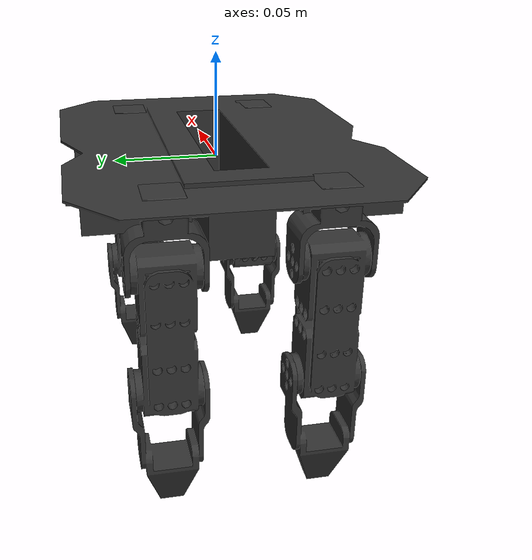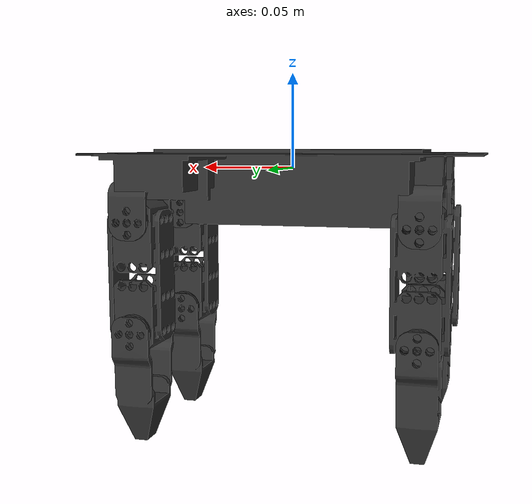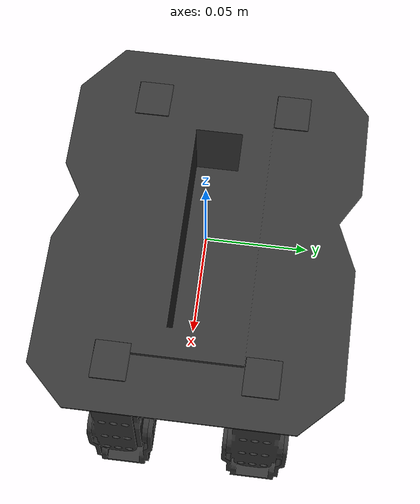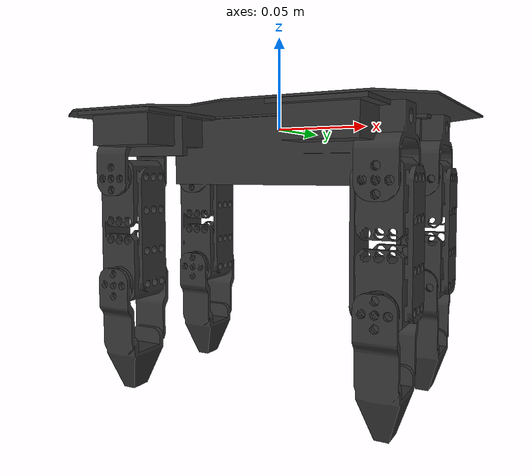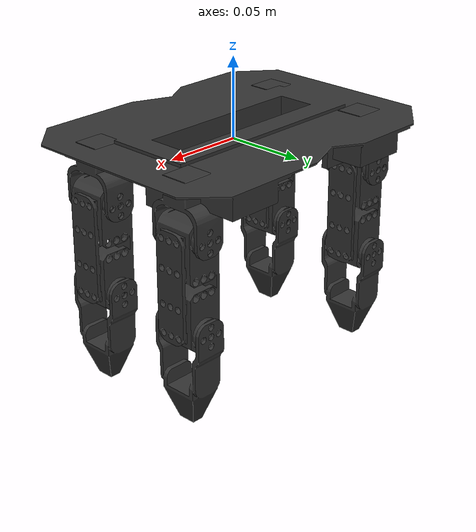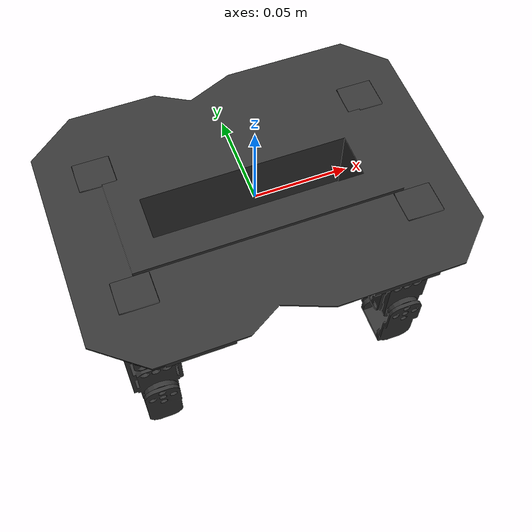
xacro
<?xml version='1.0'?>
  <robot xmlns:xacro="http://www.ros.org/wiki/xacro" name="ker">

    <xacro:property name="pi" value="3.14159265359" />

    <xacro:property name="bodywidth" value=".12000000" />
    <xacro:property name="bodylen" value=".200000000" />
    <xacro:property name="bodyheight" value=".0310000000" />
    <xacro:property name="bodymass" value="0.3045248" />

    <xacro:property name="motorwidth" value=".0344" />
    <xacro:property name="motorlen" value=".022" />
    <xacro:property name="motorheight" value=".0472" />

    <xacro:property name="bigmotorwidth" value=".025" />
    <xacro:property name="bigmotorlen" value=".051" />
    <xacro:property name="bigmotorheight" value=".053" />

    <xacro:property name="humeruswidth" value=" 0.025" />
    <xacro:property name="humeruslen" value="0.022" />
    <xacro:property name="humerusheight" value=" 0.076" />
    <xacro:property name="humerusmass" value="0.03619760" />

    <xacro:property name="femurwidth" value=" 0.025" />
    <xacro:property name="femurlen" value="0.022" />
    <xacro:property name="femurheight" value="0.076" />
    <xacro:property name="femurmass" value="0.03619760" />

    <xacro:property name="radiuswidth" value="0.025" />
    <xacro:property name="radiuslen" value="0.022" />
    <xacro:property name="radiusheight" value="0.06856" />
    <xacro:property name="radiusmass" value="0.00992447" />

    <xacro:property name="tibulawidth" value="0.025" />
    <xacro:property name="tibulalen" value="0.022" />
    <xacro:property name="tibulaheight" value="0.06856" />
    <xacro:property name="tibulamass" value="0.00992447" />

    <xacro:property name="bodytoaxislen" value="0.073" />
    <xacro:property name="bodytoaxiswidth" value="0.036" />

  <xacro:property name="jointdamping" value="1.2"/>
  <xacro:property name="jointeffort" value="1e20"/>
  <xacro:property name="jointvelocity" value="1e6"/>

    <!--TRANSMISSION-->
    <xacro:macro name="ker_transmission" params="joint_name">
      <transmission name="${joint_name}_transmission">
        <type>transmission_interface/SimpleTransmission</type>
          <joint name="${joint_name}">
            <hardwareInterface>VelocityJointInterface</hardwareInterface>
          </joint>
          <actuator name="${joint_name}_motor">
            <mechanicalReduction>1</mechanicalReduction>
          </actuator>
      </transmission>
	</xacro:macro>

    <!--BODY INERTIAL PARAMETERS-->
    <xacro:macro name="body_inertial">
        <inertial>
                <origin rpy="0 0 0" xyz="0 0 0"/>
                <mass value="${bodymass}" />
                <inertia ixx="${bodymass*(bodywidth*bodywidth + bodyheight*bodyheight)/12}" ixy="0" ixz="0"
                     iyy="${bodymass*(bodylen*bodylen + bodyheight*bodyheight)/12}" iyz="0"
                     izz="${bodymass*(bodylen*bodylen + bodywidth*bodywidth)/12}" />
        </inertial>
    </xacro:macro>

    <!--SHOULDER INERTIAL PARAMETERS-->
    <xacro:macro name="shoulder_inertial">
        <inertial>
                <origin rpy="0 0 0" xyz="0 0 ${-bigmotorwidth/2}"/>
                <mass value="0.0082825" />
                <inertia ixx="${1000*0.00000000163}" ixy="0.0" ixz="0.0"
                     iyy="${1000*0.00000000114}" iyz="0.0"
                     izz="${1000*0.00000000103}" />
        </inertial>
    </xacro:macro>

    <!--CORONA INERTIAL PARAMETERS-->
    <xacro:macro name="corona_inertial">
        <inertial>
                <origin rpy="0 0 0" xyz="0 0 0"/>
                <mass value="${2*0.0167}" />
                <inertia ixx="${2*0.0167*0.08333333*bigmotorwidth^2 + 2*0.0167*0.08333333*bigmotorheight^2}" ixy="0.0" ixz="0.0"
                     iyy="${2*0.0167*0.08333333*bigmotorlen^2 + 2*0.0167*0.08333333*bigmotorheight^2}" iyz="0.0"
                     izz="${2*0.0167*0.08333333*bigmotorlen^2 + 2*0.0167*0.08333333*bigmotorwidth^2}" />
        </inertial>
    </xacro:macro>

    <!--HUMERUS AND FEMUR INERTIAL PARAMETERS-->
    <xacro:macro name="humerus_femur_inertial" params="mass">
        <inertial>
                <origin rpy="0 0 0" xyz="0 0 ${-humerusheight/2 + 0.01}"/>
                <mass value="${humerusmass}" />
                <inertia ixx="${humerusmass*(humeruswidth*humeruswidth + humerusheight*humerusheight)/12}" ixy="0" ixz="0"
                     iyy="${humerusmass*(humeruslen*humeruslen + humerusheight*humerusheight)/12}" iyz="0"
                     izz="${humerusmass*(humeruslen*humeruslen + humeruswidth*humeruswidth)/12}" />
        </inertial>
    </xacro:macro>

    <!--RADIUS AND TIBULA INERTIAL PARAMETERS-->
    <xacro:macro name="radius_tibula_inertial" params="mass">
        <inertial>
                <origin rpy="0 0 0" xyz="0 0 ${-radiusheight/2 +0.01}"/>
                <mass value="${radiusmass}" />
                <inertia ixx="${radiusmass*(radiuswidth*radiuswidth + radiusheight*radiusheight)/12}" ixy="0" ixz="0"
                     iyy="${radiusmass*(radiuslen*radiuslen + radiusheight*radiusheight)/12}" iyz="0"
                     izz="${radiusmass*(radiuswidth*radiuswidth + radiuslen*radiuslen)/12}" />
        </inertial>
    </xacro:macro>

    <!--JOINT OPTION PRESETS-->
    <xacro:macro name="fixed" params="name pname origin">
        <joint name="${name}_joint" type="fixed">
            <parent link="${pname}"/>
            <child link="${name}"/>
            <origin xyz="${origin}" rpy="0 0 0"/>
        </joint>
    </xacro:macro>

    <xacro:macro name="revolute" params="name pname origin rot axis">
        <joint name="${name}_joint" type="revolute">
            <parent link="${pname}"/>
            <child link="${name}"/>
            <origin xyz="${origin}" rpy="${rot}"/>
            <axis xyz="${axis}"/>
            <dynamics damping="0.002" friction="0.01"/>
            <limit effort="0.4" velocity="10" lower="-3.14" upper="3.14"/>
        </joint>
    </xacro:macro>

    <!--SHOULDER-->
    <xacro:macro name="shoulder" params="name *type">
    <link name="${name}">
        <xacro:shoulder_inertial/>
        <visual>
            <geometry>
              <!--box size="${motorlen} ${motorwidth} ${motorheight}"/-->
              <mesh filename="package://ker_description/meshes/roll.STL" scale="1 1 1"/>
            </geometry>
            <origin xyz="0 0 ${-bigmotorwidth/2}" rpy="0 0 0"/>
            <material name="grey">
                <color rgba=".2 .2 .2 1"/>
            </material>
        </visual>
        <collision>
            <geometry>
              <box size="${motorlen} ${motorwidth} ${motorheight}"/>
              <!--mesh filename="package://ker_description/meshes/roll.STL" scale="1 1 1"/-->
            </geometry>
            <origin xyz="0 0 ${-bigmotorwidth/2}" rpy="0 0 0"/>
        </collision>
    </link>
    <xacro:insert_block name="type" />
    </xacro:macro>

    <!--HUMERUS-->
    <xacro:macro name="humerus" params="name *type">
    <link name="${name}">
        <xacro:humerus_femur_inertial mass="1"/>
        <collision>
          <origin xyz="0 0 ${-humerusheight/2 + 0.01}" rpy="0 0 0"/>
          <geometry>
            <box size="${humeruslen} ${humeruswidth} ${humerusheight}"/>
            <!--mesh filename="package://ker_description/meshes/humerus.stl" scale="1 1 1"/-->
          </geometry>
        </collision>
        <visual>
          <origin xyz="0 0 ${-humerusheight/2 + 0.01}" rpy="0 0 0"/>
          <geometry>
            <!--box size = "${humeruslen} ${humeruswidth} ${humerusheight}"/-->
            <mesh filename="package://ker_description/meshes/humerus.stl" scale="1 1 1"/>
          </geometry>
          <material name="grey">
              <color rgba=".2 .2 .2 1"/>
          </material>
        </visual>
    </link>
    <xacro:insert_block name="type" />
    <xacro:ker_transmission joint_name="${name}_joint" />
    </xacro:macro>

    <!--FEMUR-->
    <xacro:macro name="femur" params="name *type">
    <link name="${name}">
        <xacro:humerus_femur_inertial mass="1"/>
        <collision>
          <origin xyz="0 0 ${-femurheight/2 + 0.01}" rpy="0 0 0"/>
          <geometry>
            <box size="${femurlen} ${femurwidth} ${femurheight}"/>
            <!--mesh filename="package://ker_description/meshes/humerus.stl" scale="1 1 1"/-->
          </geometry>
        </collision>
        <visual>
          <origin xyz="0 0 ${-femurheight/2 + 0.01}" rpy="0 0 0"/>
          <geometry>
            <mesh filename="package://ker_description/meshes/humerus.stl" scale="1 1 1"/>
            <!--box size = "${femurlen} ${femurwidth} ${femurheight}"/-->
          </geometry>
          <material name="grey">
              <color rgba=".2 .2 .2 1"/>
          </material>
       </visual>
    </link>
    <xacro:insert_block name="type" />
    <xacro:ker_transmission joint_name="${name}_joint" />
    </xacro:macro>

    <!--RADIUS-->
    <xacro:macro name="radius" params="name *type">
    <link name="${name}">
        <xacro:radius_tibula_inertial mass="1"/>
        <collision>
          <origin xyz="0 0 ${-radiusheight/2 + 0.008}" rpy="0 0 0"/>
          <geometry>
            <box size = "${radiuslen} ${radiuswidth} ${radiusheight-0.025}"/>
            <!--sphere radius="0.01"/-->
          </geometry>
        </collision>
        <collision>
          <origin xyz="0 0 ${-radiusheight/2 - 0.013}" rpy="0 0 0"/>
          <geometry>
            <sphere radius="0.015"/>
          </geometry>
        </collision>
        <visual>
          <origin xyz="0 0 ${-radiusheight/2+0.018}" rpy="0 0 0"/>
          <geometry>
            <mesh filename="package://ker_description/meshes/radius_3_dec.STL" scale="1 1 1"/>
          </geometry>
          <material name="grey">
              <color rgba=".2 .2 .2 1"/>
          </material>
        </visual>
    </link>
    <gazebo reference="${name}">
        <kp>1000000.0</kp>
        <kd>10.0</kd>
        <mu1>1</mu1>
        <mu2>0.5</mu2>
        <fdir1>1 1 0</fdir1>
        <maxVel>1.2</maxVel>
        <minDepth>0.00</minDepth>
    </gazebo>
    <xacro:insert_block name="type" />
    <xacro:ker_transmission joint_name="${name}_joint" />
    </xacro:macro>

    <!--TIBULA-->
    <xacro:macro name="tibula" params="name *type">
    <link name="${name}">
        <xacro:radius_tibula_inertial mass="1"/>
        <collision>
          <origin xyz="0 0 ${-tibulaheight/2 + 0.008}" rpy="0 0 0"/>
          <geometry>
            <box size="${tibulalen} ${tibulawidth} ${tibulaheight-0.025}"/>
          </geometry>
        </collision>
        <collision>
          <origin xyz="0 0 ${-radiusheight/2 - 0.013}" rpy="0 0 0"/>
          <geometry>
            <sphere radius="0.015"/>
          </geometry>
        </collision>
        <visual>
          <origin xyz="0 0 ${-tibulaheight/2 + 0.018}" rpy="0 0 0"/>
          <geometry>
            <!--box size = "${tibulalen} ${tibulawidth} ${tibulaheight}"/-->
            <mesh filename="package://ker_description/meshes/radius_3_dec.STL" scale="1 1 1"/>
          </geometry>
          <material name="grey">
              <color rgba=".2 .2 .2 1"/>
          </material>
        </visual>
    </link>
    <gazebo reference="${name}">
        <kp>1000000.0</kp>
        <kd>10.0</kd>
        <mu1>1</mu1>
        <mu2>0.5</mu2>
        <fdir1>1 1 0</fdir1>
        <maxVel>1.2</maxVel>
        <minDepth>0.00</minDepth>
    </gazebo>
    <xacro:insert_block name="type" />
    <xacro:ker_transmission joint_name="${name}_joint" />
    </xacro:macro>

    <!--BODY-->
    <link name="body">
        <xacro:body_inertial/>

        <collision>
          <origin xyz="0 0 0.0" rpy="0 0 0"/>
          <geometry>
            <box size = "${bodylen} ${bodywidth} ${bodyheight}"/>
            <!--mesh filename="package://ker_description/meshes/platf_3_1.STL" scale="1 1 1"/-->
          </geometry>
        </collision>

        <visual>
          <origin xyz="0 0 0.0" rpy="0 0 0"/>
          <geometry>
            <mesh filename="package://ker_description/meshes/platf_3_1.STL" scale="1 1 1"/>
          </geometry>
          <material name="grey">
              <color rgba=".2 .2 .2 1"/>
          </material>
        </visual>
    </link>
    <!--DUMMY-->
    <link name="odom">
        <collision>
          <origin xyz="0 0 0" rpy="0 0 0"/>
          <geometry>
            <box size = "0 0 0"/>
          </geometry>
        </collision>

        <visual>
          <origin xyz="0 0 0" rpy="0 0 0"/>
          <geometry>
            <box size = "0 0 0"/>
          </geometry>
        </visual>
    </link>

    <xacro:fixed name="body" pname="odom" origin="0 0 0"/>

    <xacro:shoulder name="shoulder_1">
        <xacro:revolute name="shoulder_1" pname="body" origin="${bodytoaxislen} ${bodytoaxiswidth} ${-bigmotorwidth +bodyheight/2 + 0.01}" rot = "0 0 0" axis="1 0 0"/>
    </xacro:shoulder>
    <xacro:ker_transmission joint_name="shoulder_1_joint" />

    <xacro:shoulder name="shoulder_2">
        <xacro:revolute name="shoulder_2" pname="body" origin="${bodytoaxislen} ${-bodytoaxiswidth} ${-bigmotorwidth +bodyheight/2 + 0.01}" rot = "0 0 0" axis="1 0 0"/>
    </xacro:shoulder>
    <xacro:ker_transmission joint_name="shoulder_2_joint" />

    <xacro:shoulder name="shoulder_3">
        <xacro:revolute name="shoulder_3" pname="body" origin="${-bodytoaxislen} ${-bodytoaxiswidth} ${-bigmotorwidth +bodyheight/2 + 0.01}" rot = "0 0 0" axis="1 0 0"/>
    </xacro:shoulder>
    <xacro:ker_transmission joint_name="shoulder_3_joint" />

    <xacro:shoulder name="shoulder_4">
        <xacro:revolute name="shoulder_4" pname="body" origin="${-bodytoaxislen} ${bodytoaxiswidth} ${-bigmotorwidth +bodyheight/2 + 0.01}" rot = "0 0 0" axis="1 0 0"/>
    </xacro:shoulder>
    <xacro:ker_transmission joint_name="shoulder_4_joint" />

    <xacro:humerus name="humerus_1">
        <xacro:revolute name="humerus_1" pname="shoulder_1" origin="0 0 ${-motorheight + 0.02}" rot = "0 0 0" axis="0 1 0"/>
    </xacro:humerus>
    <xacro:humerus name="humerus_2">
        <xacro:revolute name="humerus_2" pname="shoulder_2" origin="0 0 ${-motorheight + 0.02}" rot = "0 0 ${pi}" axis="0 -1 0"/>
    </xacro:humerus>
    <xacro:femur name="femur_2">
        <xacro:revolute name="femur_2" pname="shoulder_3" origin="0 0 ${-motorheight + 0.02}" rot = "0 0 ${pi}" axis="0 -1 0"/>
    </xacro:femur>
    <xacro:femur name="femur_1">
        <xacro:revolute name="femur_1" pname="shoulder_4" origin="0 0 ${-motorheight + 0.02}" rot = "0 0 0" axis="0 1 0"/>
    </xacro:femur>

    <xacro:radius name="radius_1" >
        <xacro:revolute name="radius_1" pname="humerus_1" origin="0 0 ${-humerusheight + 0.02}" rot = "0 0 0" axis="0 1 0"/>
    </xacro:radius>
    <xacro:radius name="radius_2" >
        <xacro:revolute name="radius_2" pname="humerus_2" origin="0 0 ${-humerusheight + 0.02}" rot = "0 0 0" axis="0 -1 0"/>
    </xacro:radius>
    <xacro:tibula name="tibula_2" >
        <xacro:revolute name="tibula_2" pname="femur_2" origin="0 0 ${-femurheight + 0.02}" rot = "0 0 0" axis="0 -1 0"/>
    </xacro:tibula>
    <xacro:tibula name="tibula_1" >
        <xacro:revolute name="tibula_1" pname="femur_1" origin="0 0 ${-femurheight + 0.02}" rot = "0 0 0" axis="0 1 0"/>
    </xacro:tibula>

    <gazebo>
        <plugin filename="libgazebo_ros_control.so" name="gazebo_ros_control">
                <robotParam>robot_description</robotParam>
        </plugin>
    </gazebo>
  </robot>
